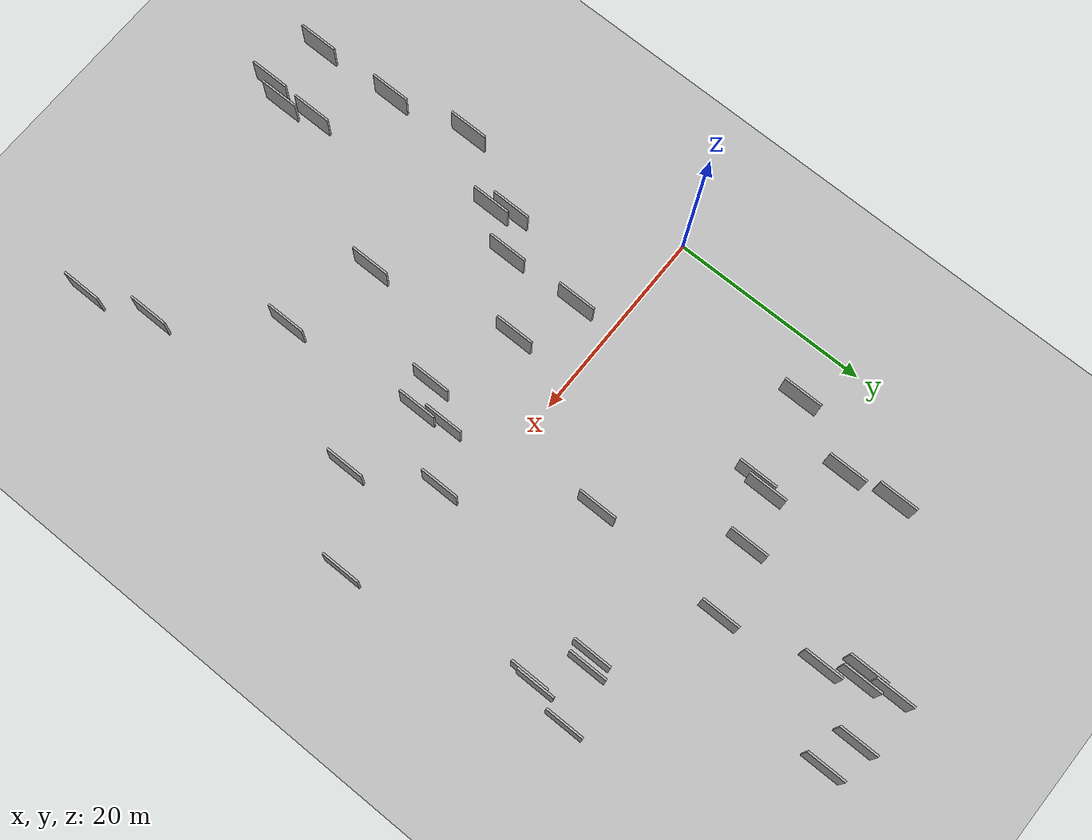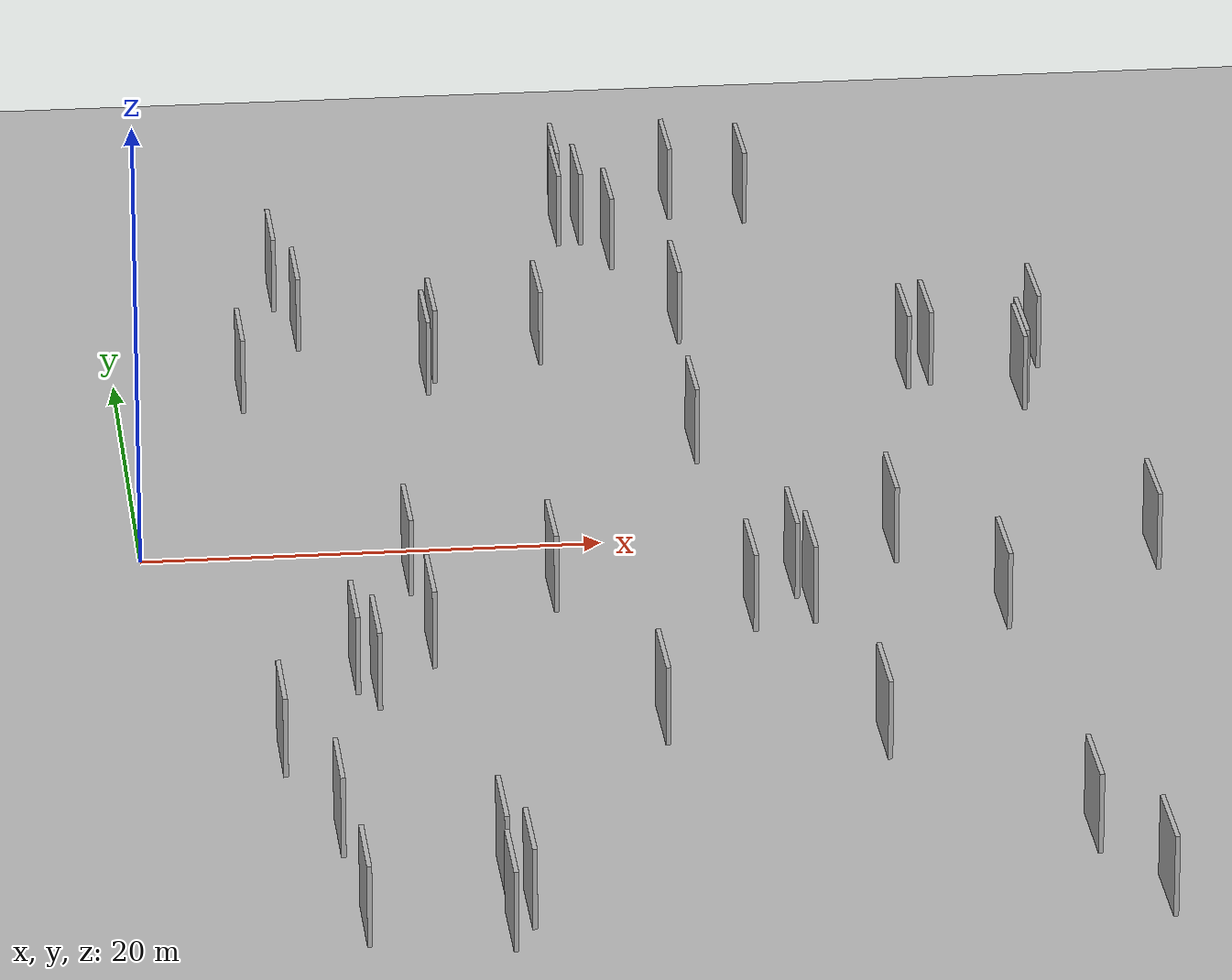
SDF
<?xml version="1.0" encoding="utf-8"?>

<sdf version="1.6">

   <world name="default">

      <gui fullscreen="0">

         <camera name="user_camera">

            <pose>-15 0 4.57585 0 0 0</pose>

            <view_controller>orbit</view_controller>

         </camera>

      </gui>

      <scene>

         <sky>

           <clouds>

             <speed>12</speed>

           </clouds>

         </sky>

         <ambient>0.4 0.4 0.4 1</ambient>

         <background>0.7 0.7 0.7 1</background>

         <shadows>1</shadows>

      </scene>

      <gravity>0 0 -9.8066</gravity>

      <magnetic_field>6e-06 2.3e-05 -4.2e-05</magnetic_field>

      <physics default="0" name="default_physics" type="ode">

         <ode>

            <solver>

               <type>quick</type>

               <iters>10</iters>

               <sor>1.0</sor>

               <use_dynamic_moi_rescaling>0</use_dynamic_moi_rescaling>

            </solver>

            <constraints>

               <cfm>0</cfm>

               <erp>0.2</erp>

               <contact_max_correcting_vel>100</contact_max_correcting_vel>

               <contact_surface_layer>0.001</contact_surface_layer>

            </constraints>

         </ode>

         <max_step_size>0.004</max_step_size>

         <real_time_factor>1</real_time_factor>

         <real_time_update_rate>250</real_time_update_rate>

      </physics>

      <light name="sun" type="directional">

         <cast_shadows>1</cast_shadows>

         <pose>0 0 10 0 0 0</pose>

         <diffuse>0.8 0.8 0.8 1</diffuse>

         <specular>0.2 0.2 0.2 1</specular>

         <attenuation>

            <range>1000</range>

            <constant>0.9</constant>

            <linear>0.01</linear>

            <quadratic>0.001</quadratic>

         </attenuation>

         <direction>-0.5 0.1 -0.9</direction>

      </light>

      <include>

         <name>ground_plane_1</name>

         <uri>model://HANNAS_ground_plane</uri>

         <pose>0 0 0  0 0 0</pose>

      </include>

      <include>

         <name>ground_plane_2</name>

         <uri>model://HANNAS_ground_plane</uri>

         <pose>100 0 0  0 0 0</pose>

      </include>

      <model name="HANNAS_wall_1">

         <static>1</static>

         <pose frame="">43.4611 -4.4167 0.0 0.000000 0.000000 1.570796</pose>

         <link name="link">

            <pose frame="">0 0 2.00 0 0 0</pose>

            <collision name="collision">

               <geometry>

                  <box>

                     <size>4.00 0.2 4.00</size>

                  </box>

               </geometry>

               <max_contacts>10</max_contacts>

               <surface>

                  <contact>

                     <ode/>

                  </contact>

                  <bounce/>

                  <friction>

                     <torsional>

                        <ode/>

                     </torsional>

                     <ode/>

                  </friction>

               </surface>

            </collision>

            <visual name="visual">

               <cast_shadows>0</cast_shadows>

               <geometry>

                  <box>

                     <size>4.00 0.2 4.00</size>

                  </box>

               </geometry>

               <material>

                  <script>

                     <uri>model://HANNAS_wall/materials/scripts</uri>

                     <uri>model://HANNAS_wall/materials/textures</uri>

                     <name>vrc/HANNAS_wall</name>

                  </script>

               </material>

            </visual>

            <self_collide>0</self_collide>

            <enable_wind>0</enable_wind>

            <kinematic>0</kinematic>

         </link>

      </model>

      <model name="HANNAS_wall_2">

         <static>1</static>

         <pose frame="">7.7652 29.2097 0.0 0.000000 0.000000 1.570796</pose>

         <link name="link">

            <pose frame="">0 0 2.00 0 0 0</pose>

            <collision name="collision">

               <geometry>

                  <box>

                     <size>4.00 0.2 4.00</size>

                  </box>

               </geometry>

               <max_contacts>10</max_contacts>

               <surface>

                  <contact>

                     <ode/>

                  </contact>

                  <bounce/>

                  <friction>

                     <torsional>

                        <ode/>

                     </torsional>

                     <ode/>

                  </friction>

               </surface>

            </collision>

            <visual name="visual">

               <cast_shadows>0</cast_shadows>

               <geometry>

                  <box>

                     <size>4.00 0.2 4.00</size>

                  </box>

               </geometry>

               <material>

                  <script>

                     <uri>model://HANNAS_wall/materials/scripts</uri>

                     <uri>model://HANNAS_wall/materials/textures</uri>

                     <name>vrc/HANNAS_wall</name>

                  </script>

               </material>

            </visual>

            <self_collide>0</self_collide>

            <enable_wind>0</enable_wind>

            <kinematic>0</kinematic>

         </link>

      </model>

      <model name="HANNAS_wall_3">

         <static>1</static>

         <pose frame="">4.5289 -22.1389 0.0 0.000000 0.000000 1.570796</pose>

         <link name="link">

            <pose frame="">0 0 2.00 0 0 0</pose>

            <collision name="collision">

               <geometry>

                  <box>

                     <size>4.00 0.2 4.00</size>

                  </box>

               </geometry>

               <max_contacts>10</max_contacts>

               <surface>

                  <contact>

                     <ode/>

                  </contact>

                  <bounce/>

                  <friction>

                     <torsional>

                        <ode/>

                     </torsional>

                     <ode/>

                  </friction>

               </surface>

            </collision>

            <visual name="visual">

               <cast_shadows>0</cast_shadows>

               <geometry>

                  <box>

                     <size>4.00 0.2 4.00</size>

                  </box>

               </geometry>

               <material>

                  <script>

                     <uri>model://HANNAS_wall/materials/scripts</uri>

                     <uri>model://HANNAS_wall/materials/textures</uri>

                     <name>vrc/HANNAS_wall</name>

                  </script>

               </material>

            </visual>

            <self_collide>0</self_collide>

            <enable_wind>0</enable_wind>

            <kinematic>0</kinematic>

         </link>

      </model>

      <model name="HANNAS_wall_4">

         <static>1</static>

         <pose frame="">8.9324 -15.7940 0.0 0.000000 0.000000 1.570796</pose>

         <link name="link">

            <pose frame="">0 0 2.00 0 0 0</pose>

            <collision name="collision">

               <geometry>

                  <box>

                     <size>4.00 0.2 4.00</size>

                  </box>

               </geometry>

               <max_contacts>10</max_contacts>

               <surface>

                  <contact>

                     <ode/>

                  </contact>

                  <bounce/>

                  <friction>

                     <torsional>

                        <ode/>

                     </torsional>

                     <ode/>

                  </friction>

               </surface>

            </collision>

            <visual name="visual">

               <cast_shadows>0</cast_shadows>

               <geometry>

                  <box>

                     <size>4.00 0.2 4.00</size>

                  </box>

               </geometry>

               <material>

                  <script>

                     <uri>model://HANNAS_wall/materials/scripts</uri>

                     <uri>model://HANNAS_wall/materials/textures</uri>

                     <name>vrc/HANNAS_wall</name>

                  </script>

               </material>

            </visual>

            <self_collide>0</self_collide>

            <enable_wind>0</enable_wind>

            <kinematic>0</kinematic>

         </link>

      </model>

      <model name="HANNAS_wall_5">

         <static>1</static>

         <pose frame="">13.9302 18.4947 0.0 0.000000 0.000000 1.570796</pose>

         <link name="link">

            <pose frame="">0 0 2.00 0 0 0</pose>

            <collision name="collision">

               <geometry>

                  <box>

                     <size>4.00 0.2 4.00</size>

                  </box>

               </geometry>

               <max_contacts>10</max_contacts>

               <surface>

                  <contact>

                     <ode/>

                  </contact>

                  <bounce/>

                  <friction>

                     <torsional>

                        <ode/>

                     </torsional>

                     <ode/>

                  </friction>

               </surface>

            </collision>

            <visual name="visual">

               <cast_shadows>0</cast_shadows>

               <geometry>

                  <box>

                     <size>4.00 0.2 4.00</size>

                  </box>

               </geometry>

               <material>

                  <script>

                     <uri>model://HANNAS_wall/materials/scripts</uri>

                     <uri>model://HANNAS_wall/materials/textures</uri>

                     <name>vrc/HANNAS_wall</name>

                  </script>

               </material>

            </visual>

            <self_collide>0</self_collide>

            <enable_wind>0</enable_wind>

            <kinematic>0</kinematic>

         </link>

      </model>

      <model name="HANNAS_wall_6">

         <static>1</static>

         <pose frame="">30.4205 38.0196 0.0 0.000000 0.000000 1.570796</pose>

         <link name="link">

            <pose frame="">0 0 2.00 0 0 0</pose>

            <collision name="collision">

               <geometry>

                  <box>

                     <size>4.00 0.2 4.00</size>

                  </box>

               </geometry>

               <max_contacts>10</max_contacts>

               <surface>

                  <contact>

                     <ode/>

                  </contact>

                  <bounce/>

                  <friction>

                     <torsional>

                        <ode/>

                     </torsional>

                     <ode/>

                  </friction>

               </surface>

            </collision>

            <visual name="visual">

               <cast_shadows>0</cast_shadows>

               <geometry>

                  <box>

                     <size>4.00 0.2 4.00</size>

                  </box>

               </geometry>

               <material>

                  <script>

                     <uri>model://HANNAS_wall/materials/scripts</uri>

                     <uri>model://HANNAS_wall/materials/textures</uri>

                     <name>vrc/HANNAS_wall</name>

                  </script>

               </material>

            </visual>

            <self_collide>0</self_collide>

            <enable_wind>0</enable_wind>

            <kinematic>0</kinematic>

         </link>

      </model>

      <model name="HANNAS_wall_7">

         <static>1</static>

         <pose frame="">17.2365 -6.3447 0.0 0.000000 0.000000 1.570796</pose>

         <link name="link">

            <pose frame="">0 0 2.00 0 0 0</pose>

            <collision name="collision">

               <geometry>

                  <box>

                     <size>4.00 0.2 4.00</size>

                  </box>

               </geometry>

               <max_contacts>10</max_contacts>

               <surface>

                  <contact>

                     <ode/>

                  </contact>

                  <bounce/>

                  <friction>

                     <torsional>

                        <ode/>

                     </torsional>

                     <ode/>

                  </friction>

               </surface>

            </collision>

            <visual name="visual">

               <cast_shadows>0</cast_shadows>

               <geometry>

                  <box>

                     <size>4.00 0.2 4.00</size>

                  </box>

               </geometry>

               <material>

                  <script>

                     <uri>model://HANNAS_wall/materials/scripts</uri>

                     <uri>model://HANNAS_wall/materials/textures</uri>

                     <name>vrc/HANNAS_wall</name>

                  </script>

               </material>

            </visual>

            <self_collide>0</self_collide>

            <enable_wind>0</enable_wind>

            <kinematic>0</kinematic>

         </link>

      </model>

      <model name="HANNAS_wall_8">

         <static>1</static>

         <pose frame="">23.6583 32.7867 0.0 0.000000 0.000000 1.570796</pose>

         <link name="link">

            <pose frame="">0 0 2.00 0 0 0</pose>

            <collision name="collision">

               <geometry>

                  <box>

                     <size>4.00 0.2 4.00</size>

                  </box>

               </geometry>

               <max_contacts>10</max_contacts>

               <surface>

                  <contact>

                     <ode/>

                  </contact>

                  <bounce/>

                  <friction>

                     <torsional>

                        <ode/>

                     </torsional>

                     <ode/>

                  </friction>

               </surface>

            </collision>

            <visual name="visual">

               <cast_shadows>0</cast_shadows>

               <geometry>

                  <box>

                     <size>4.00 0.2 4.00</size>

                  </box>

               </geometry>

               <material>

                  <script>

                     <uri>model://HANNAS_wall/materials/scripts</uri>

                     <uri>model://HANNAS_wall/materials/textures</uri>

                     <name>vrc/HANNAS_wall</name>

                  </script>

               </material>

            </visual>

            <self_collide>0</self_collide>

            <enable_wind>0</enable_wind>

            <kinematic>0</kinematic>

         </link>

      </model>

      <model name="HANNAS_wall_9">

         <static>1</static>

         <pose frame="">27.6014 -6.0131 0.0 0.000000 0.000000 1.570796</pose>

         <link name="link">

            <pose frame="">0 0 2.00 0 0 0</pose>

            <collision name="collision">

               <geometry>

                  <box>

                     <size>4.00 0.2 4.00</size>

                  </box>

               </geometry>

               <max_contacts>10</max_contacts>

               <surface>

                  <contact>

                     <ode/>

                  </contact>

                  <bounce/>

                  <friction>

                     <torsional>

                        <ode/>

                     </torsional>

                     <ode/>

                  </friction>

               </surface>

            </collision>

            <visual name="visual">

               <cast_shadows>0</cast_shadows>

               <geometry>

                  <box>

                     <size>4.00 0.2 4.00</size>

                  </box>

               </geometry>

               <material>

                  <script>

                     <uri>model://HANNAS_wall/materials/scripts</uri>

                     <uri>model://HANNAS_wall/materials/textures</uri>

                     <name>vrc/HANNAS_wall</name>

                  </script>

               </material>

            </visual>

            <self_collide>0</self_collide>

            <enable_wind>0</enable_wind>

            <kinematic>0</kinematic>

         </link>

      </model>

      <model name="HANNAS_wall_10">

         <static>1</static>

         <pose frame="">22.5400 36.0966 0.0 0.000000 0.000000 1.570796</pose>

         <link name="link">

            <pose frame="">0 0 2.00 0 0 0</pose>

            <collision name="collision">

               <geometry>

                  <box>

                     <size>4.00 0.2 4.00</size>

                  </box>

               </geometry>

               <max_contacts>10</max_contacts>

               <surface>

                  <contact>

                     <ode/>

                  </contact>

                  <bounce/>

                  <friction>

                     <torsional>

                        <ode/>

                     </torsional>

                     <ode/>

                  </friction>

               </surface>

            </collision>

            <visual name="visual">

               <cast_shadows>0</cast_shadows>

               <geometry>

                  <box>

                     <size>4.00 0.2 4.00</size>

                  </box>

               </geometry>

               <material>

                  <script>

                     <uri>model://HANNAS_wall/materials/scripts</uri>

                     <uri>model://HANNAS_wall/materials/textures</uri>

                     <name>vrc/HANNAS_wall</name>

                  </script>

               </material>

            </visual>

            <self_collide>0</self_collide>

            <enable_wind>0</enable_wind>

            <kinematic>0</kinematic>

         </link>

      </model>

      <model name="HANNAS_wall_11">

         <static>1</static>

         <pose frame="">28.0667 -8.6852 0.0 0.000000 0.000000 1.570796</pose>

         <link name="link">

            <pose frame="">0 0 2.00 0 0 0</pose>

            <collision name="collision">

               <geometry>

                  <box>

                     <size>4.00 0.2 4.00</size>

                  </box>

               </geometry>

               <max_contacts>10</max_contacts>

               <surface>

                  <contact>

                     <ode/>

                  </contact>

                  <bounce/>

                  <friction>

                     <torsional>

                        <ode/>

                     </torsional>

                     <ode/>

                  </friction>

               </surface>

            </collision>

            <visual name="visual">

               <cast_shadows>0</cast_shadows>

               <geometry>

                  <box>

                     <size>4.00 0.2 4.00</size>

                  </box>

               </geometry>

               <material>

                  <script>

                     <uri>model://HANNAS_wall/materials/scripts</uri>

                     <uri>model://HANNAS_wall/materials/textures</uri>

                     <name>vrc/HANNAS_wall</name>

                  </script>

               </material>

            </visual>

            <self_collide>0</self_collide>

            <enable_wind>0</enable_wind>

            <kinematic>0</kinematic>

         </link>

      </model>

      <model name="HANNAS_wall_12">

         <static>1</static>

         <pose frame="">26.9973 38.9243 0.0 0.000000 0.000000 1.570796</pose>

         <link name="link">

            <pose frame="">0 0 2.00 0 0 0</pose>

            <collision name="collision">

               <geometry>

                  <box>

                     <size>4.00 0.2 4.00</size>

                  </box>

               </geometry>

               <max_contacts>10</max_contacts>

               <surface>

                  <contact>

                     <ode/>

                  </contact>

                  <bounce/>

                  <friction>

                     <torsional>

                        <ode/>

                     </torsional>

                     <ode/>

                  </friction>

               </surface>

            </collision>

            <visual name="visual">

               <cast_shadows>0</cast_shadows>

               <geometry>

                  <box>

                     <size>4.00 0.2 4.00</size>

                  </box>

               </geometry>

               <material>

                  <script>

                     <uri>model://HANNAS_wall/materials/scripts</uri>

                     <uri>model://HANNAS_wall/materials/textures</uri>

                     <name>vrc/HANNAS_wall</name>

                  </script>

               </material>

            </visual>

            <self_collide>0</self_collide>

            <enable_wind>0</enable_wind>

            <kinematic>0</kinematic>

         </link>

      </model>

      <model name="HANNAS_wall_13">

         <static>1</static>

         <pose frame="">36.6958 -32.9422 0.0 0.000000 0.000000 1.570796</pose>

         <link name="link">

            <pose frame="">0 0 2.00 0 0 0</pose>

            <collision name="collision">

               <geometry>

                  <box>

                     <size>4.00 0.2 4.00</size>

                  </box>

               </geometry>

               <max_contacts>10</max_contacts>

               <surface>

                  <contact>

                     <ode/>

                  </contact>

                  <bounce/>

                  <friction>

                     <torsional>

                        <ode/>

                     </torsional>

                     <ode/>

                  </friction>

               </surface>

            </collision>

            <visual name="visual">

               <cast_shadows>0</cast_shadows>

               <geometry>

                  <box>

                     <size>4.00 0.2 4.00</size>

                  </box>

               </geometry>

               <material>

                  <script>

                     <uri>model://HANNAS_wall/materials/scripts</uri>

                     <uri>model://HANNAS_wall/materials/textures</uri>

                     <name>vrc/HANNAS_wall</name>

                  </script>

               </material>

            </visual>

            <self_collide>0</self_collide>

            <enable_wind>0</enable_wind>

            <kinematic>0</kinematic>

         </link>

      </model>

      <model name="HANNAS_wall_14">

         <static>1</static>

         <pose frame="">19.2754 21.5604 0.0 0.000000 0.000000 1.570796</pose>

         <link name="link">

            <pose frame="">0 0 2.00 0 0 0</pose>

            <collision name="collision">

               <geometry>

                  <box>

                     <size>4.00 0.2 4.00</size>

                  </box>

               </geometry>

               <max_contacts>10</max_contacts>

               <surface>

                  <contact>

                     <ode/>

                  </contact>

                  <bounce/>

                  <friction>

                     <torsional>

                        <ode/>

                     </torsional>

                     <ode/>

                  </friction>

               </surface>

            </collision>

            <visual name="visual">

               <cast_shadows>0</cast_shadows>

               <geometry>

                  <box>

                     <size>4.00 0.2 4.00</size>

                  </box>

               </geometry>

               <material>

                  <script>

                     <uri>model://HANNAS_wall/materials/scripts</uri>

                     <uri>model://HANNAS_wall/materials/textures</uri>

                     <name>vrc/HANNAS_wall</name>

                  </script>

               </material>

            </visual>

            <self_collide>0</self_collide>

            <enable_wind>0</enable_wind>

            <kinematic>0</kinematic>

         </link>

      </model>

      <model name="HANNAS_wall_15">

         <static>1</static>

         <pose frame="">11.5745 -11.7539 0.0 0.000000 0.000000 1.570796</pose>

         <link name="link">

            <pose frame="">0 0 2.00 0 0 0</pose>

            <collision name="collision">

               <geometry>

                  <box>

                     <size>4.00 0.2 4.00</size>

                  </box>

               </geometry>

               <max_contacts>10</max_contacts>

               <surface>

                  <contact>

                     <ode/>

                  </contact>

                  <bounce/>

                  <friction>

                     <torsional>

                        <ode/>

                     </torsional>

                     <ode/>

                  </friction>

               </surface>

            </collision>

            <visual name="visual">

               <cast_shadows>0</cast_shadows>

               <geometry>

                  <box>

                     <size>4.00 0.2 4.00</size>

                  </box>

               </geometry>

               <material>

                  <script>

                     <uri>model://HANNAS_wall/materials/scripts</uri>

                     <uri>model://HANNAS_wall/materials/textures</uri>

                     <name>vrc/HANNAS_wall</name>

                  </script>

               </material>

            </visual>

            <self_collide>0</self_collide>

            <enable_wind>0</enable_wind>

            <kinematic>0</kinematic>

         </link>

      </model>

      <model name="HANNAS_wall_16">

         <static>1</static>

         <pose frame="">12.3602 -39.7356 0.0 0.000000 0.000000 1.570796</pose>

         <link name="link">

            <pose frame="">0 0 2.00 0 0 0</pose>

            <collision name="collision">

               <geometry>

                  <box>

                     <size>4.00 0.2 4.00</size>

                  </box>

               </geometry>

               <max_contacts>10</max_contacts>

               <surface>

                  <contact>

                     <ode/>

                  </contact>

                  <bounce/>

                  <friction>

                     <torsional>

                        <ode/>

                     </torsional>

                     <ode/>

                  </friction>

               </surface>

            </collision>

            <visual name="visual">

               <cast_shadows>0</cast_shadows>

               <geometry>

                  <box>

                     <size>4.00 0.2 4.00</size>

                  </box>

               </geometry>

               <material>

                  <script>

                     <uri>model://HANNAS_wall/materials/scripts</uri>

                     <uri>model://HANNAS_wall/materials/textures</uri>

                     <name>vrc/HANNAS_wall</name>

                  </script>

               </material>

            </visual>

            <self_collide>0</self_collide>

            <enable_wind>0</enable_wind>

            <kinematic>0</kinematic>

         </link>

      </model>

      <model name="HANNAS_wall_17">

         <static>1</static>

         <pose frame="">11.2399 -3.9809 0.0 0.000000 0.000000 1.570796</pose>

         <link name="link">

            <pose frame="">0 0 2.00 0 0 0</pose>

            <collision name="collision">

               <geometry>

                  <box>

                     <size>4.00 0.2 4.00</size>

                  </box>

               </geometry>

               <max_contacts>10</max_contacts>

               <surface>

                  <contact>

                     <ode/>

                  </contact>

                  <bounce/>

                  <friction>

                     <torsional>

                        <ode/>

                     </torsional>

                     <ode/>

                  </friction>

               </surface>

            </collision>

            <visual name="visual">

               <cast_shadows>0</cast_shadows>

               <geometry>

                  <box>

                     <size>4.00 0.2 4.00</size>

                  </box>

               </geometry>

               <material>

                  <script>

                     <uri>model://HANNAS_wall/materials/scripts</uri>

                     <uri>model://HANNAS_wall/materials/textures</uri>

                     <name>vrc/HANNAS_wall</name>

                  </script>

               </material>

            </visual>

            <self_collide>0</self_collide>

            <enable_wind>0</enable_wind>

            <kinematic>0</kinematic>

         </link>

      </model>

      <model name="HANNAS_wall_18">

         <static>1</static>

         <pose frame="">32.3186 -2.5547 0.0 0.000000 0.000000 1.570796</pose>

         <link name="link">

            <pose frame="">0 0 2.00 0 0 0</pose>

            <collision name="collision">

               <geometry>

                  <box>

                     <size>4.00 0.2 4.00</size>

                  </box>

               </geometry>

               <max_contacts>10</max_contacts>

               <surface>

                  <contact>

                     <ode/>

                  </contact>

                  <bounce/>

                  <friction>

                     <torsional>

                        <ode/>

                     </torsional>

                     <ode/>

                  </friction>

               </surface>

            </collision>

            <visual name="visual">

               <cast_shadows>0</cast_shadows>

               <geometry>

                  <box>

                     <size>4.00 0.2 4.00</size>

                  </box>

               </geometry>

               <material>

                  <script>

                     <uri>model://HANNAS_wall/materials/scripts</uri>

                     <uri>model://HANNAS_wall/materials/textures</uri>

                     <name>vrc/HANNAS_wall</name>

                  </script>

               </material>

            </visual>

            <self_collide>0</self_collide>

            <enable_wind>0</enable_wind>

            <kinematic>0</kinematic>

         </link>

      </model>

      <model name="HANNAS_wall_19">

         <static>1</static>

         <pose frame="">8.5202 24.2947 0.0 0.000000 0.000000 1.570796</pose>

         <link name="link">

            <pose frame="">0 0 2.00 0 0 0</pose>

            <collision name="collision">

               <geometry>

                  <box>

                     <size>4.00 0.2 4.00</size>

                  </box>

               </geometry>

               <max_contacts>10</max_contacts>

               <surface>

                  <contact>

                     <ode/>

                  </contact>

                  <bounce/>

                  <friction>

                     <torsional>

                        <ode/>

                     </torsional>

                     <ode/>

                  </friction>

               </surface>

            </collision>

            <visual name="visual">

               <cast_shadows>0</cast_shadows>

               <geometry>

                  <box>

                     <size>4.00 0.2 4.00</size>

                  </box>

               </geometry>

               <material>

                  <script>

                     <uri>model://HANNAS_wall/materials/scripts</uri>

                     <uri>model://HANNAS_wall/materials/textures</uri>

                     <name>vrc/HANNAS_wall</name>

                  </script>

               </material>

            </visual>

            <self_collide>0</self_collide>

            <enable_wind>0</enable_wind>

            <kinematic>0</kinematic>

         </link>

      </model>

      <model name="HANNAS_wall_20">

         <static>1</static>

         <pose frame="">6.2668 -30.1538 0.0 0.000000 0.000000 1.570796</pose>

         <link name="link">

            <pose frame="">0 0 2.00 0 0 0</pose>

            <collision name="collision">

               <geometry>

                  <box>

                     <size>4.00 0.2 4.00</size>

                  </box>

               </geometry>

               <max_contacts>10</max_contacts>

               <surface>

                  <contact>

                     <ode/>

                  </contact>

                  <bounce/>

                  <friction>

                     <torsional>

                        <ode/>

                     </torsional>

                     <ode/>

                  </friction>

               </surface>

            </collision>

            <visual name="visual">

               <cast_shadows>0</cast_shadows>

               <geometry>

                  <box>

                     <size>4.00 0.2 4.00</size>

                  </box>

               </geometry>

               <material>

                  <script>

                     <uri>model://HANNAS_wall/materials/scripts</uri>

                     <uri>model://HANNAS_wall/materials/textures</uri>

                     <name>vrc/HANNAS_wall</name>

                  </script>

               </material>

            </visual>

            <self_collide>0</self_collide>

            <enable_wind>0</enable_wind>

            <kinematic>0</kinematic>

         </link>

      </model>

      <model name="HANNAS_wall_21">

         <static>1</static>

         <pose frame="">40.4555 14.8352 0.0 0.000000 0.000000 1.570796</pose>

         <link name="link">

            <pose frame="">0 0 2.00 0 0 0</pose>

            <collision name="collision">

               <geometry>

                  <box>

                     <size>4.00 0.2 4.00</size>

                  </box>

               </geometry>

               <max_contacts>10</max_contacts>

               <surface>

                  <contact>

                     <ode/>

                  </contact>

                  <bounce/>

                  <friction>

                     <torsional>

                        <ode/>

                     </torsional>

                     <ode/>

                  </friction>

               </surface>

            </collision>

            <visual name="visual">

               <cast_shadows>0</cast_shadows>

               <geometry>

                  <box>

                     <size>4.00 0.2 4.00</size>

                  </box>

               </geometry>

               <material>

                  <script>

                     <uri>model://HANNAS_wall/materials/scripts</uri>

                     <uri>model://HANNAS_wall/materials/textures</uri>

                     <name>vrc/HANNAS_wall</name>

                  </script>

               </material>

            </visual>

            <self_collide>0</self_collide>

            <enable_wind>0</enable_wind>

            <kinematic>0</kinematic>

         </link>

      </model>

      <model name="HANNAS_wall_22">

         <static>1</static>

         <pose frame="">25.0120 9.3199 0.0 0.000000 0.000000 1.570796</pose>

         <link name="link">

            <pose frame="">0 0 2.00 0 0 0</pose>

            <collision name="collision">

               <geometry>

                  <box>

                     <size>4.00 0.2 4.00</size>

                  </box>

               </geometry>

               <max_contacts>10</max_contacts>

               <surface>

                  <contact>

                     <ode/>

                  </contact>

                  <bounce/>

                  <friction>

                     <torsional>

                        <ode/>

                     </torsional>

                     <ode/>

                  </friction>

               </surface>

            </collision>

            <visual name="visual">

               <cast_shadows>0</cast_shadows>

               <geometry>

                  <box>

                     <size>4.00 0.2 4.00</size>

                  </box>

               </geometry>

               <material>

                  <script>

                     <uri>model://HANNAS_wall/materials/scripts</uri>

                     <uri>model://HANNAS_wall/materials/textures</uri>

                     <name>vrc/HANNAS_wall</name>

                  </script>

               </material>

            </visual>

            <self_collide>0</self_collide>

            <enable_wind>0</enable_wind>

            <kinematic>0</kinematic>

         </link>

      </model>

      <model name="HANNAS_wall_23">

         <static>1</static>

         <pose frame="">38.7995 -39.1545 0.0 0.000000 0.000000 1.570796</pose>

         <link name="link">

            <pose frame="">0 0 2.00 0 0 0</pose>

            <collision name="collision">

               <geometry>

                  <box>

                     <size>4.00 0.2 4.00</size>

                  </box>

               </geometry>

               <max_contacts>10</max_contacts>

               <surface>

                  <contact>

                     <ode/>

                  </contact>

                  <bounce/>

                  <friction>

                     <torsional>

                        <ode/>

                     </torsional>

                     <ode/>

                  </friction>

               </surface>

            </collision>

            <visual name="visual">

               <cast_shadows>0</cast_shadows>

               <geometry>

                  <box>

                     <size>4.00 0.2 4.00</size>

                  </box>

               </geometry>

               <material>

                  <script>

                     <uri>model://HANNAS_wall/materials/scripts</uri>

                     <uri>model://HANNAS_wall/materials/textures</uri>

                     <name>vrc/HANNAS_wall</name>

                  </script>

               </material>

            </visual>

            <self_collide>0</self_collide>

            <enable_wind>0</enable_wind>

            <kinematic>0</kinematic>

         </link>

      </model>

      <model name="HANNAS_wall_24">

         <static>1</static>

         <pose frame="">25.4463 -9.2913 0.0 0.000000 0.000000 1.570796</pose>

         <link name="link">

            <pose frame="">0 0 2.00 0 0 0</pose>

            <collision name="collision">

               <geometry>

                  <box>

                     <size>4.00 0.2 4.00</size>

                  </box>

               </geometry>

               <max_contacts>10</max_contacts>

               <surface>

                  <contact>

                     <ode/>

                  </contact>

                  <bounce/>

                  <friction>

                     <torsional>

                        <ode/>

                     </torsional>

                     <ode/>

                  </friction>

               </surface>

            </collision>

            <visual name="visual">

               <cast_shadows>0</cast_shadows>

               <geometry>

                  <box>

                     <size>4.00 0.2 4.00</size>

                  </box>

               </geometry>

               <material>

                  <script>

                     <uri>model://HANNAS_wall/materials/scripts</uri>

                     <uri>model://HANNAS_wall/materials/textures</uri>

                     <name>vrc/HANNAS_wall</name>

                  </script>

               </material>

            </visual>

            <self_collide>0</self_collide>

            <enable_wind>0</enable_wind>

            <kinematic>0</kinematic>

         </link>

      </model>

      <model name="HANNAS_wall_25">

         <static>1</static>

         <pose frame="">5.5265 17.1444 0.0 0.000000 0.000000 1.570796</pose>

         <link name="link">

            <pose frame="">0 0 2.00 0 0 0</pose>

            <collision name="collision">

               <geometry>

                  <box>

                     <size>4.00 0.2 4.00</size>

                  </box>

               </geometry>

               <max_contacts>10</max_contacts>

               <surface>

                  <contact>

                     <ode/>

                  </contact>

                  <bounce/>

                  <friction>

                     <torsional>

                        <ode/>

                     </torsional>

                     <ode/>

                  </friction>

               </surface>

            </collision>

            <visual name="visual">

               <cast_shadows>0</cast_shadows>

               <geometry>

                  <box>

                     <size>4.00 0.2 4.00</size>

                  </box>

               </geometry>

               <material>

                  <script>

                     <uri>model://HANNAS_wall/materials/scripts</uri>

                     <uri>model://HANNAS_wall/materials/textures</uri>

                     <name>vrc/HANNAS_wall</name>

                  </script>

               </material>

            </visual>

            <self_collide>0</self_collide>

            <enable_wind>0</enable_wind>

            <kinematic>0</kinematic>

         </link>

      </model>

      <model name="HANNAS_wall_26">

         <static>1</static>

         <pose frame="">36.4590 17.3320 0.0 0.000000 0.000000 1.570796</pose>

         <link name="link">

            <pose frame="">0 0 2.00 0 0 0</pose>

            <collision name="collision">

               <geometry>

                  <box>

                     <size>4.00 0.2 4.00</size>

                  </box>

               </geometry>

               <max_contacts>10</max_contacts>

               <surface>

                  <contact>

                     <ode/>

                  </contact>

                  <bounce/>

                  <friction>

                     <torsional>

                        <ode/>

                     </torsional>

                     <ode/>

                  </friction>

               </surface>

            </collision>

            <visual name="visual">

               <cast_shadows>0</cast_shadows>

               <geometry>

                  <box>

                     <size>4.00 0.2 4.00</size>

                  </box>

               </geometry>

               <material>

                  <script>

                     <uri>model://HANNAS_wall/materials/scripts</uri>

                     <uri>model://HANNAS_wall/materials/textures</uri>

                     <name>vrc/HANNAS_wall</name>

                  </script>

               </material>

            </visual>

            <self_collide>0</self_collide>

            <enable_wind>0</enable_wind>

            <kinematic>0</kinematic>

         </link>

      </model>

      <model name="HANNAS_wall_27">

         <static>1</static>

         <pose frame="">8.1536 -14.1096 0.0 0.000000 0.000000 1.570796</pose>

         <link name="link">

            <pose frame="">0 0 2.00 0 0 0</pose>

            <collision name="collision">

               <geometry>

                  <box>

                     <size>4.00 0.2 4.00</size>

                  </box>

               </geometry>

               <max_contacts>10</max_contacts>

               <surface>

                  <contact>

                     <ode/>

                  </contact>

                  <bounce/>

                  <friction>

                     <torsional>

                        <ode/>

                     </torsional>

                     <ode/>

                  </friction>

               </surface>

            </collision>

            <visual name="visual">

               <cast_shadows>0</cast_shadows>

               <geometry>

                  <box>

                     <size>4.00 0.2 4.00</size>

                  </box>

               </geometry>

               <material>

                  <script>

                     <uri>model://HANNAS_wall/materials/scripts</uri>

                     <uri>model://HANNAS_wall/materials/textures</uri>

                     <name>vrc/HANNAS_wall</name>

                  </script>

               </material>

            </visual>

            <self_collide>0</self_collide>

            <enable_wind>0</enable_wind>

            <kinematic>0</kinematic>

         </link>

      </model>

      <model name="HANNAS_wall_28">

         <static>1</static>

         <pose frame="">40.2459 14.0135 0.0 0.000000 0.000000 1.570796</pose>

         <link name="link">

            <pose frame="">0 0 2.00 0 0 0</pose>

            <collision name="collision">

               <geometry>

                  <box>

                     <size>4.00 0.2 4.00</size>

                  </box>

               </geometry>

               <max_contacts>10</max_contacts>

               <surface>

                  <contact>

                     <ode/>

                  </contact>

                  <bounce/>

                  <friction>

                     <torsional>

                        <ode/>

                     </torsional>

                     <ode/>

                  </friction>

               </surface>

            </collision>

            <visual name="visual">

               <cast_shadows>0</cast_shadows>

               <geometry>

                  <box>

                     <size>4.00 0.2 4.00</size>

                  </box>

               </geometry>

               <material>

                  <script>

                     <uri>model://HANNAS_wall/materials/scripts</uri>

                     <uri>model://HANNAS_wall/materials/textures</uri>

                     <name>vrc/HANNAS_wall</name>

                  </script>

               </material>

            </visual>

            <self_collide>0</self_collide>

            <enable_wind>0</enable_wind>

            <kinematic>0</kinematic>

         </link>

      </model>

      <model name="HANNAS_wall_29">

         <static>1</static>

         <pose frame="">13.2906 -37.7220 0.0 0.000000 0.000000 1.570796</pose>

         <link name="link">

            <pose frame="">0 0 2.00 0 0 0</pose>

            <collision name="collision">

               <geometry>

                  <box>

                     <size>4.00 0.2 4.00</size>

                  </box>

               </geometry>

               <max_contacts>10</max_contacts>

               <surface>

                  <contact>

                     <ode/>

                  </contact>

                  <bounce/>

                  <friction>

                     <torsional>

                        <ode/>

                     </torsional>

                     <ode/>

                  </friction>

               </surface>

            </collision>

            <visual name="visual">

               <cast_shadows>0</cast_shadows>

               <geometry>

                  <box>

                     <size>4.00 0.2 4.00</size>

                  </box>

               </geometry>

               <material>

                  <script>

                     <uri>model://HANNAS_wall/materials/scripts</uri>

                     <uri>model://HANNAS_wall/materials/textures</uri>

                     <name>vrc/HANNAS_wall</name>

                  </script>

               </material>

            </visual>

            <self_collide>0</self_collide>

            <enable_wind>0</enable_wind>

            <kinematic>0</kinematic>

         </link>

      </model>

      <model name="HANNAS_wall_30">

         <static>1</static>

         <pose frame="">14.3458 19.8846 0.0 0.000000 0.000000 1.570796</pose>

         <link name="link">

            <pose frame="">0 0 2.00 0 0 0</pose>

            <collision name="collision">

               <geometry>

                  <box>

                     <size>4.00 0.2 4.00</size>

                  </box>

               </geometry>

               <max_contacts>10</max_contacts>

               <surface>

                  <contact>

                     <ode/>

                  </contact>

                  <bounce/>

                  <friction>

                     <torsional>

                        <ode/>

                     </torsional>

                     <ode/>

                  </friction>

               </surface>

            </collision>

            <visual name="visual">

               <cast_shadows>0</cast_shadows>

               <geometry>

                  <box>

                     <size>4.00 0.2 4.00</size>

                  </box>

               </geometry>

               <material>

                  <script>

                     <uri>model://HANNAS_wall/materials/scripts</uri>

                     <uri>model://HANNAS_wall/materials/textures</uri>

                     <name>vrc/HANNAS_wall</name>

                  </script>

               </material>

            </visual>

            <self_collide>0</self_collide>

            <enable_wind>0</enable_wind>

            <kinematic>0</kinematic>

         </link>

      </model>

      <model name="HANNAS_wall_31">

         <static>1</static>

         <pose frame="">21.5252 36.0146 0.0 0.000000 0.000000 1.570796</pose>

         <link name="link">

            <pose frame="">0 0 2.00 0 0 0</pose>

            <collision name="collision">

               <geometry>

                  <box>

                     <size>4.00 0.2 4.00</size>

                  </box>

               </geometry>

               <max_contacts>10</max_contacts>

               <surface>

                  <contact>

                     <ode/>

                  </contact>

                  <bounce/>

                  <friction>

                     <torsional>

                        <ode/>

                     </torsional>

                     <ode/>

                  </friction>

               </surface>

            </collision>

            <visual name="visual">

               <cast_shadows>0</cast_shadows>

               <geometry>

                  <box>

                     <size>4.00 0.2 4.00</size>

                  </box>

               </geometry>

               <material>

                  <script>

                     <uri>model://HANNAS_wall/materials/scripts</uri>

                     <uri>model://HANNAS_wall/materials/textures</uri>

                     <name>vrc/HANNAS_wall</name>

                  </script>

               </material>

            </visual>

            <self_collide>0</self_collide>

            <enable_wind>0</enable_wind>

            <kinematic>0</kinematic>

         </link>

      </model>

      <model name="HANNAS_wall_32">

         <static>1</static>

         <pose frame="">6.6328 -38.6857 0.0 0.000000 0.000000 1.570796</pose>

         <link name="link">

            <pose frame="">0 0 2.00 0 0 0</pose>

            <collision name="collision">

               <geometry>

                  <box>

                     <size>4.00 0.2 4.00</size>

                  </box>

               </geometry>

               <max_contacts>10</max_contacts>

               <surface>

                  <contact>

                     <ode/>

                  </contact>

                  <bounce/>

                  <friction>

                     <torsional>

                        <ode/>

                     </torsional>

                     <ode/>

                  </friction>

               </surface>

            </collision>

            <visual name="visual">

               <cast_shadows>0</cast_shadows>

               <geometry>

                  <box>

                     <size>4.00 0.2 4.00</size>

                  </box>

               </geometry>

               <material>

                  <script>

                     <uri>model://HANNAS_wall/materials/scripts</uri>

                     <uri>model://HANNAS_wall/materials/textures</uri>

                     <name>vrc/HANNAS_wall</name>

                  </script>

               </material>

            </visual>

            <self_collide>0</self_collide>

            <enable_wind>0</enable_wind>

            <kinematic>0</kinematic>

         </link>

      </model>

      <model name="HANNAS_wall_33">

         <static>1</static>

         <pose frame="">29.4282 -22.9187 0.0 0.000000 0.000000 1.570796</pose>

         <link name="link">

            <pose frame="">0 0 2.00 0 0 0</pose>

            <collision name="collision">

               <geometry>

                  <box>

                     <size>4.00 0.2 4.00</size>

                  </box>

               </geometry>

               <max_contacts>10</max_contacts>

               <surface>

                  <contact>

                     <ode/>

                  </contact>

                  <bounce/>

                  <friction>

                     <torsional>

                        <ode/>

                     </torsional>

                     <ode/>

                  </friction>

               </surface>

            </collision>

            <visual name="visual">

               <cast_shadows>0</cast_shadows>

               <geometry>

                  <box>

                     <size>4.00 0.2 4.00</size>

                  </box>

               </geometry>

               <material>

                  <script>

                     <uri>model://HANNAS_wall/materials/scripts</uri>

                     <uri>model://HANNAS_wall/materials/textures</uri>

                     <name>vrc/HANNAS_wall</name>

                  </script>

               </material>

            </visual>

            <self_collide>0</self_collide>

            <enable_wind>0</enable_wind>

            <kinematic>0</kinematic>

         </link>

      </model>

      <model name="HANNAS_wall_34">

         <static>1</static>

         <pose frame="">35.4074 16.9643 0.0 0.000000 0.000000 1.570796</pose>

         <link name="link">

            <pose frame="">0 0 2.00 0 0 0</pose>

            <collision name="collision">

               <geometry>

                  <box>

                     <size>4.00 0.2 4.00</size>

                  </box>

               </geometry>

               <max_contacts>10</max_contacts>

               <surface>

                  <contact>

                     <ode/>

                  </contact>

                  <bounce/>

                  <friction>

                     <torsional>

                        <ode/>

                     </torsional>

                     <ode/>

                  </friction>

               </surface>

            </collision>

            <visual name="visual">

               <cast_shadows>0</cast_shadows>

               <geometry>

                  <box>

                     <size>4.00 0.2 4.00</size>

                  </box>

               </geometry>

               <material>

                  <script>

                     <uri>model://HANNAS_wall/materials/scripts</uri>

                     <uri>model://HANNAS_wall/materials/textures</uri>

                     <name>vrc/HANNAS_wall</name>

                  </script>

               </material>

            </visual>

            <self_collide>0</self_collide>

            <enable_wind>0</enable_wind>

            <kinematic>0</kinematic>

         </link>

      </model>

      <model name="HANNAS_wall_35">

         <static>1</static>

         <pose frame="">20.4808 -20.5655 0.0 0.000000 0.000000 1.570796</pose>

         <link name="link">

            <pose frame="">0 0 2.00 0 0 0</pose>

            <collision name="collision">

               <geometry>

                  <box>

                     <size>4.00 0.2 4.00</size>

                  </box>

               </geometry>

               <max_contacts>10</max_contacts>

               <surface>

                  <contact>

                     <ode/>

                  </contact>

                  <bounce/>

                  <friction>

                     <torsional>

                        <ode/>

                     </torsional>

                     <ode/>

                  </friction>

               </surface>

            </collision>

            <visual name="visual">

               <cast_shadows>0</cast_shadows>

               <geometry>

                  <box>

                     <size>4.00 0.2 4.00</size>

                  </box>

               </geometry>

               <material>

                  <script>

                     <uri>model://HANNAS_wall/materials/scripts</uri>

                     <uri>model://HANNAS_wall/materials/textures</uri>

                     <name>vrc/HANNAS_wall</name>

                  </script>

               </material>

            </visual>

            <self_collide>0</self_collide>

            <enable_wind>0</enable_wind>

            <kinematic>0</kinematic>

         </link>

      </model>

      <model name="HANNAS_wall_36">

         <static>1</static>

         <pose frame="">25.7604 23.3898 0.0 0.000000 0.000000 1.570796</pose>

         <link name="link">

            <pose frame="">0 0 2.00 0 0 0</pose>

            <collision name="collision">

               <geometry>

                  <box>

                     <size>4.00 0.2 4.00</size>

                  </box>

               </geometry>

               <max_contacts>10</max_contacts>

               <surface>

                  <contact>

                     <ode/>

                  </contact>

                  <bounce/>

                  <friction>

                     <torsional>

                        <ode/>

                     </torsional>

                     <ode/>

                  </friction>

               </surface>

            </collision>

            <visual name="visual">

               <cast_shadows>0</cast_shadows>

               <geometry>

                  <box>

                     <size>4.00 0.2 4.00</size>

                  </box>

               </geometry>

               <material>

                  <script>

                     <uri>model://HANNAS_wall/materials/scripts</uri>

                     <uri>model://HANNAS_wall/materials/textures</uri>

                     <name>vrc/HANNAS_wall</name>

                  </script>

               </material>

            </visual>

            <self_collide>0</self_collide>

            <enable_wind>0</enable_wind>

            <kinematic>0</kinematic>

         </link>

      </model>

      <model name="HANNAS_wall_37">

         <static>1</static>

         <pose frame="">36.1763 -10.1638 0.0 0.000000 0.000000 1.570796</pose>

         <link name="link">

            <pose frame="">0 0 2.00 0 0 0</pose>

            <collision name="collision">

               <geometry>

                  <box>

                     <size>4.00 0.2 4.00</size>

                  </box>

               </geometry>

               <max_contacts>10</max_contacts>

               <surface>

                  <contact>

                     <ode/>

                  </contact>

                  <bounce/>

                  <friction>

                     <torsional>

                        <ode/>

                     </torsional>

                     <ode/>

                  </friction>

               </surface>

            </collision>

            <visual name="visual">

               <cast_shadows>0</cast_shadows>

               <geometry>

                  <box>

                     <size>4.00 0.2 4.00</size>

                  </box>

               </geometry>

               <material>

                  <script>

                     <uri>model://HANNAS_wall/materials/scripts</uri>

                     <uri>model://HANNAS_wall/materials/textures</uri>

                     <name>vrc/HANNAS_wall</name>

                  </script>

               </material>

            </visual>

            <self_collide>0</self_collide>

            <enable_wind>0</enable_wind>

            <kinematic>0</kinematic>

         </link>

      </model>

      <model name="HANNAS_wall_38">

         <static>1</static>

         <pose frame="">21.7481 38.9348 0.0 0.000000 0.000000 1.570796</pose>

         <link name="link">

            <pose frame="">0 0 2.00 0 0 0</pose>

            <collision name="collision">

               <geometry>

                  <box>

                     <size>4.00 0.2 4.00</size>

                  </box>

               </geometry>

               <max_contacts>10</max_contacts>

               <surface>

                  <contact>

                     <ode/>

                  </contact>

                  <bounce/>

                  <friction>

                     <torsional>

                        <ode/>

                     </torsional>

                     <ode/>

                  </friction>

               </surface>

            </collision>

            <visual name="visual">

               <cast_shadows>0</cast_shadows>

               <geometry>

                  <box>

                     <size>4.00 0.2 4.00</size>

                  </box>

               </geometry>

               <material>

                  <script>

                     <uri>model://HANNAS_wall/materials/scripts</uri>

                     <uri>model://HANNAS_wall/materials/textures</uri>

                     <name>vrc/HANNAS_wall</name>

                  </script>

               </material>

            </visual>

            <self_collide>0</self_collide>

            <enable_wind>0</enable_wind>

            <kinematic>0</kinematic>

         </link>

      </model>

      <model name="HANNAS_wall_39">

         <static>1</static>

         <pose frame="">41.5363 18.8372 0.0 0.000000 0.000000 1.570796</pose>

         <link name="link">

            <pose frame="">0 0 2.00 0 0 0</pose>

            <collision name="collision">

               <geometry>

                  <box>

                     <size>4.00 0.2 4.00</size>

                  </box>

               </geometry>

               <max_contacts>10</max_contacts>

               <surface>

                  <contact>

                     <ode/>

                  </contact>

                  <bounce/>

                  <friction>

                     <torsional>

                        <ode/>

                     </torsional>

                     <ode/>

                  </friction>

               </surface>

            </collision>

            <visual name="visual">

               <cast_shadows>0</cast_shadows>

               <geometry>

                  <box>

                     <size>4.00 0.2 4.00</size>

                  </box>

               </geometry>

               <material>

                  <script>

                     <uri>model://HANNAS_wall/materials/scripts</uri>

                     <uri>model://HANNAS_wall/materials/textures</uri>

                     <name>vrc/HANNAS_wall</name>

                  </script>

               </material>

            </visual>

            <self_collide>0</self_collide>

            <enable_wind>0</enable_wind>

            <kinematic>0</kinematic>

         </link>

      </model>

      <model name="HANNAS_wall_40">

         <static>1</static>

         <pose frame="">12.4906 -34.4691 0.0 0.000000 0.000000 1.570796</pose>

         <link name="link">

            <pose frame="">0 0 2.00 0 0 0</pose>

            <collision name="collision">

               <geometry>

                  <box>

                     <size>4.00 0.2 4.00</size>

                  </box>

               </geometry>

               <max_contacts>10</max_contacts>

               <surface>

                  <contact>

                     <ode/>

                  </contact>

                  <bounce/>

                  <friction>

                     <torsional>

                        <ode/>

                     </torsional>

                     <ode/>

                  </friction>

               </surface>

            </collision>

            <visual name="visual">

               <cast_shadows>0</cast_shadows>

               <geometry>

                  <box>

                     <size>4.00 0.2 4.00</size>

                  </box>

               </geometry>

               <material>

                  <script>

                     <uri>model://HANNAS_wall/materials/scripts</uri>

                     <uri>model://HANNAS_wall/materials/textures</uri>

                     <name>vrc/HANNAS_wall</name>

                  </script>

               </material>

            </visual>

            <self_collide>0</self_collide>

            <enable_wind>0</enable_wind>

            <kinematic>0</kinematic>

         </link>

      </model>

   </world>

</sdf>
